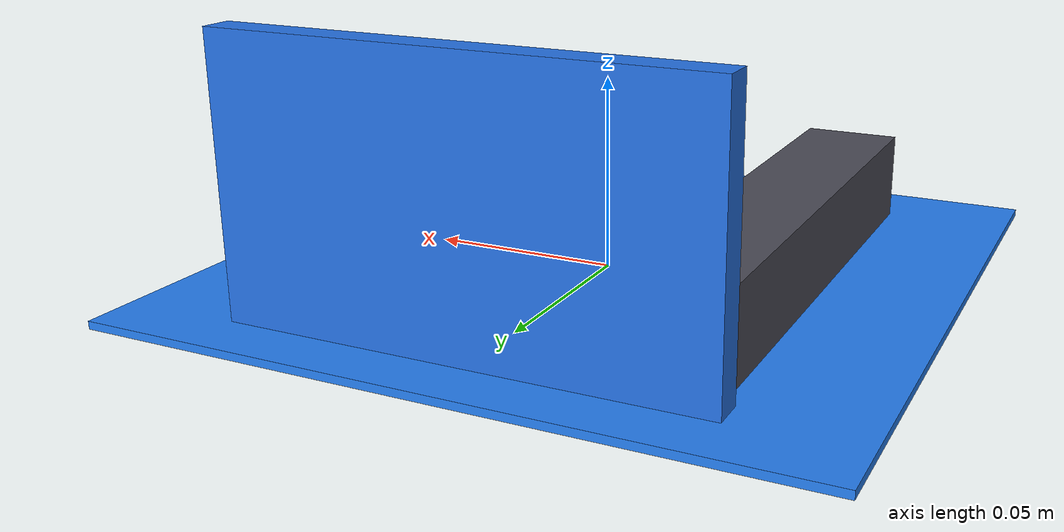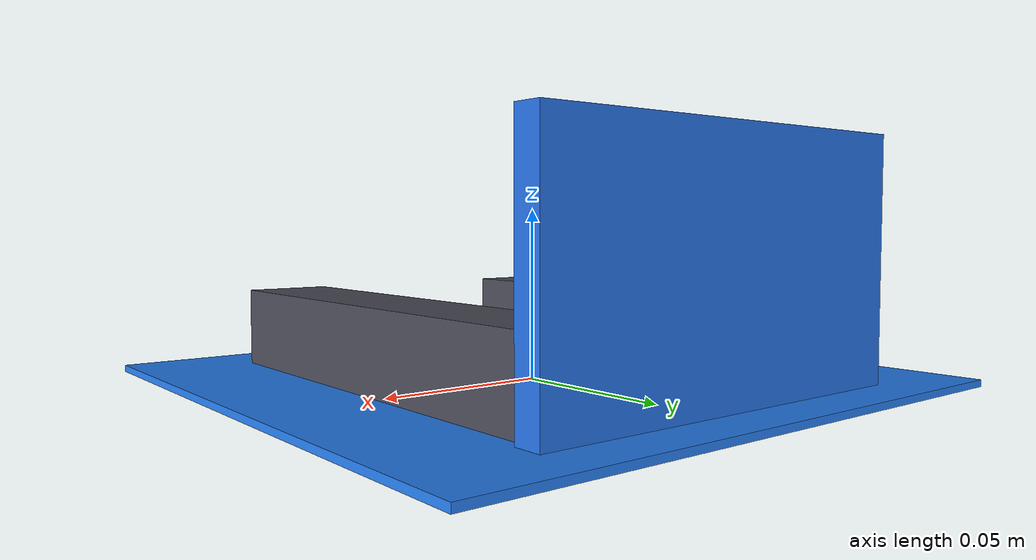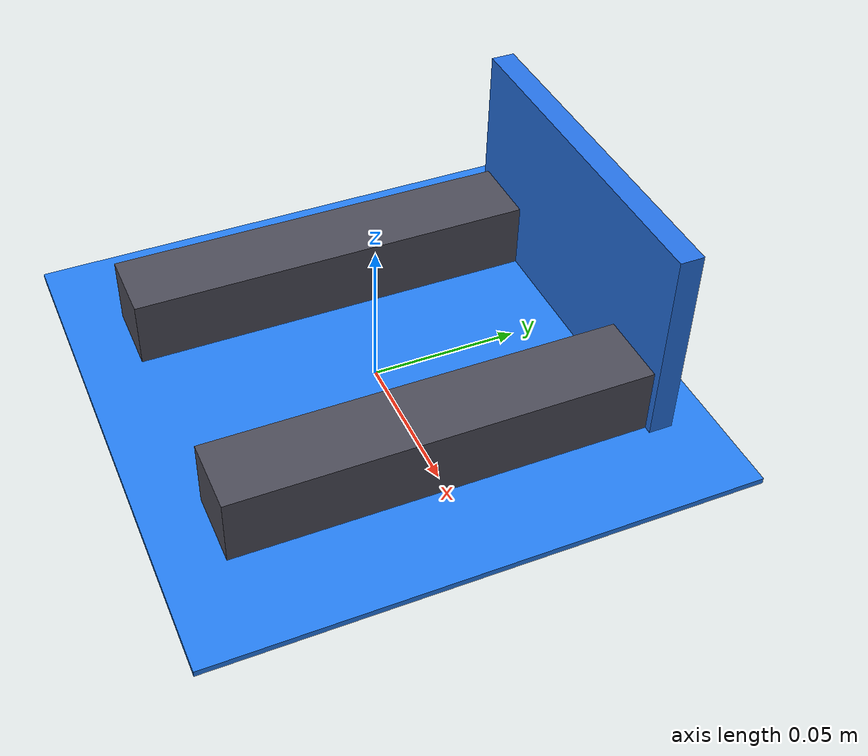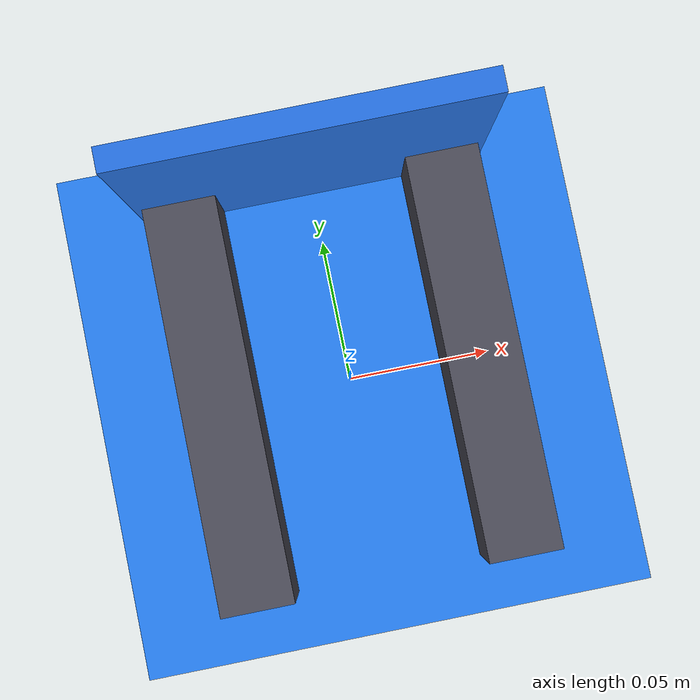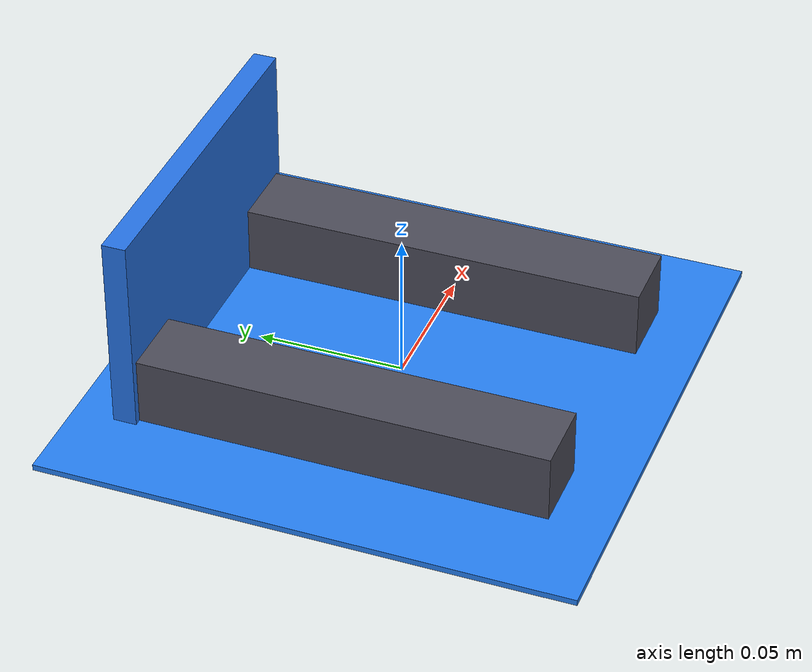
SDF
<?xml version="1.0" ?>
<sdf version="1.8">
  <model name="dropoff_station_blue">
    <static>true</static>
    <link name="link">
      <!-- Left Support Rail (Pallet left runner rests on top) -->
      <visual name="visual_rail_left">
        <pose>-0.045 0 0.0125 0 0 0</pose>
        <geometry>
          <box>
            <size>0.025 0.14 0.025</size>
          </box>
        </geometry>
        <material>
          <ambient>0.2 0.2 0.25 1.0</ambient>
          <diffuse>0.3 0.3 0.35 1.0</diffuse>
          <specular>0.4 0.4 0.4 1.0</specular>
        </material>
      </visual>
      <collision name="collision_rail_left">
        <pose>-0.045 0 0.0125 0 0 0</pose>
        <geometry>
          <box>
            <size>0.025 0.14 0.025</size>
          </box>
        </geometry>
        <surface>
          <friction>
            <ode>
              <mu>2.0</mu>
              <mu2>2.0</mu2>
            </ode>
          </friction>
        </surface>
      </collision>

      <!-- Right Support Rail (Pallet right runner rests on top) -->
      <visual name="visual_rail_right">
        <pose>0.045 0 0.0125 0 0 0</pose>
        <geometry>
          <box>
            <size>0.025 0.14 0.025</size>
          </box>
        </geometry>
        <material>
          <ambient>0.2 0.2 0.25 1.0</ambient>
          <diffuse>0.3 0.3 0.35 1.0</diffuse>
          <specular>0.4 0.4 0.4 1.0</specular>
        </material>
      </visual>
      <collision name="collision_rail_right">
        <pose>0.045 0 0.0125 0 0 0</pose>
        <geometry>
          <box>
            <size>0.025 0.14 0.025</size>
          </box>
        </geometry>
        <surface>
          <friction>
            <ode>
              <mu>2.0</mu>
              <mu2>2.0</mu2>
            </ode>
          </friction>
        </surface>
      </collision>

      <!-- Back Stop Wall -->
      <visual name="visual_back_stop">
        <pose>0 0.072 0.035 0 0 0</pose>
        <geometry>
          <box>
            <size>0.12 0.008 0.07</size>
          </box>
        </geometry>
        <material>
          <ambient>0.1 0.3 0.7 1.0</ambient>
          <diffuse>0.15 0.45 0.9 1.0</diffuse>
          <specular>0.5 0.5 0.5 1.0</specular>
        </material>
      </visual>
      <collision name="collision_back_stop">
        <pose>0 0.072 0.035 0 0 0</pose>
        <geometry>
          <box>
            <size>0.12 0.008 0.07</size>
          </box>
        </geometry>
      </collision>

      <!-- Base Floor Marker / Color Plate -->
      <visual name="visual_floor_plate">
        <pose>0 0 0.001 0 0 0</pose>
        <geometry>
          <box>
            <size>0.18 0.18 0.002</size>
          </box>
        </geometry>
        <material>
          <ambient>0.1 0.35 0.8 1.0</ambient>
          <diffuse>0.15 0.5 0.95 1.0</diffuse>
          <specular>0.6 0.6 0.6 1.0</specular>
        </material>
      </visual>
    </link>
  </model>
</sdf>
